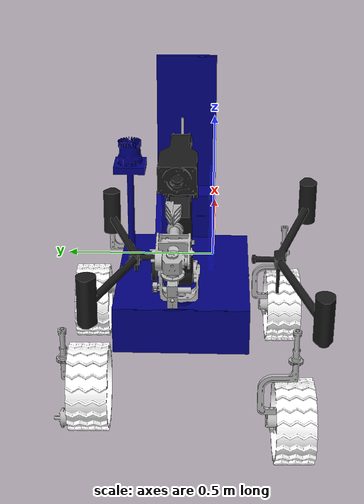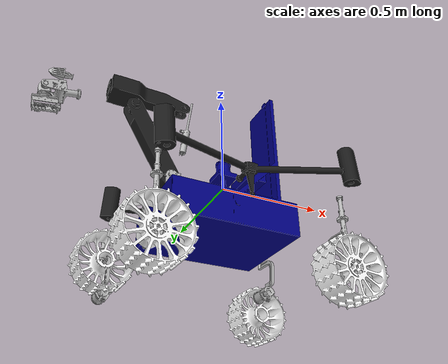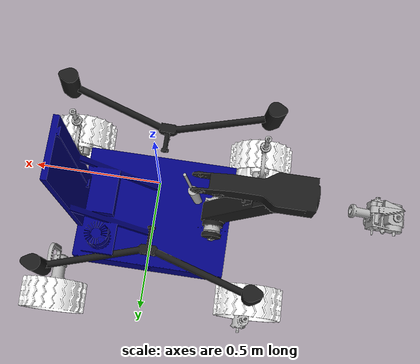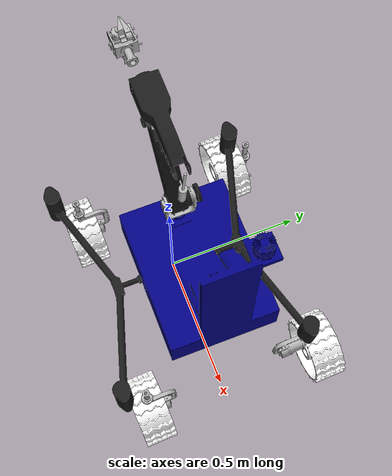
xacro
<?xml version="1.0" ?>
<robot name="kerby" xmlns:xacro="http://www.ros.org/wiki/xacro">

<xacro:include filename="$(find kerby_description)/urdf/materials.xacro" />
<xacro:include filename="$(find kerby_description)/urdf/kerby.trans" />
<xacro:include filename="$(find kerby_description)/urdf/kerby.gazebo" />

<xacro:property name="rpm_to_Radps" value="${2*pi/60.0}" />     <!-- rotations per minute to Rad per second conversion -->
<xacro:property name="velocity_scaling" value="1.0" />     <!-- allows to scale all max velocities down at once -->

<xacro:macro name="aaa_joint_limits" params="lower:=0.0 upper:=0.0 velocity:=${rpm_to_Radps} effort:=100.0">
  <limit lower="${lower}" upper="${upper}" velocity="${velocity}" effort="${effort}"/>
</xacro:macro>

<xacro:property name="joint1_limits">
  <xacro:aaa_joint_limits lower="${-1.5*pi}" upper="${1.5*pi}" velocity="${3 * rpm_to_Radps * velocity_scaling}" />
</xacro:property>

<xacro:property name="joint2_limits">
  <xacro:aaa_joint_limits lower="${-pi}" upper="${pi/2}" velocity="${1 * rpm_to_Radps * velocity_scaling}" />
</xacro:property>

<xacro:property name="joint3_limits">
  <xacro:aaa_joint_limits lower="${-pi/4}" upper="${pi/4}" velocity="${1.5 * rpm_to_Radps * velocity_scaling}" />
</xacro:property>

<xacro:property name="joint4_limits">
  <xacro:aaa_joint_limits lower="${-1.5*pi}" upper="${1.5*pi}" velocity="${6 * rpm_to_Radps * velocity_scaling}" />
</xacro:property>

<xacro:property name="joint5_limits">
  <xacro:aaa_joint_limits lower="${-pi/2}" upper="${pi/2}" velocity="${2 * rpm_to_Radps * velocity_scaling}" />
</xacro:property>

<xacro:property name="joint6_limits">
  <xacro:aaa_joint_limits lower="${-pi}" upper="${pi}" velocity="${6 * rpm_to_Radps * velocity_scaling}" />
</xacro:property>

<link name="base_link">
  <inertial>
    <origin xyz="0.029969421077976347 0.10500332317031078 -0.11062962842827342" rpy="0 0 0"/>
    <mass value="49.646028993833724"/>
    <inertia ixx="1.707273" iyy="2.534956" izz="2.455449" ixy="-0.019527" iyz="-0.055493" ixz="-0.42303"/>
  </inertial>
  <visual>
    <origin xyz="0 0 0" rpy="0 0 0"/>
    <geometry>
      <mesh filename="package://kerby_description/meshes/base_link.stl" scale="0.001 0.001 0.001"/>
    </geometry>
    <material name="blue"/>
  </visual>
  <collision>
    <origin xyz="0 0 0" rpy="0 0 0"/>
    <geometry>
      <mesh filename="package://kerby_description/meshes/base_link.stl" scale="0.001 0.001 0.001"/>
    </geometry>
  </collision>
</link>

<link name="steering_1">
  <inertial>
    <origin xyz="0.0029876037310107573 -0.03602767454974787 -0.21327240320670968" rpy="0 0 0"/>
    <mass value="0.3543584805415501"/>
    <inertia ixx="0.003568" iyy="0.003121" izz="0.000552" ixy="1.7e-05" iyz="-0.000205" ixz="3.2e-05"/>
  </inertial>
  <visual>
    <origin xyz="-0.423307 -0.476325 0.140943" rpy="0 0 0"/>
    <geometry>
      <mesh filename="package://kerby_description/meshes/steering_1.stl" scale="0.001 0.001 0.001"/>
    </geometry>
    <material name="silver"/>
  </visual>
  <collision>
    <origin xyz="-0.423307 -0.476325 0.140943" rpy="0 0 0"/>
    <geometry>
      <mesh filename="package://kerby_description/meshes/steering_1.stl" scale="0.001 0.001 0.001"/>
    </geometry>
  </collision>
</link>

<link name="steering_2">
  <inertial>
    <origin xyz="-0.0029877917009968336 0.036027907882538956 -0.21327245240653972" rpy="0 0 0"/>
    <mass value="0.3543584805415501"/>
    <inertia ixx="0.003568" iyy="0.003121" izz="0.000552" ixy="1.7e-05" iyz="0.000205" ixz="-3.2e-05"/>
  </inertial>
  <visual>
    <origin xyz="-0.42303 0.272491 0.147921" rpy="0 0 0"/>
    <geometry>
      <mesh filename="package://kerby_description/meshes/steering_2.stl" scale="0.001 0.001 0.001"/>
    </geometry>
    <material name="silver"/>
  </visual>
  <collision>
    <origin xyz="-0.42303 0.272491 0.147921" rpy="0 0 0"/>
    <geometry>
      <mesh filename="package://kerby_description/meshes/steering_2.stl" scale="0.001 0.001 0.001"/>
    </geometry>
  </collision>
</link>

<link name="steering_3">
  <inertial>
    <origin xyz="-0.0029882539688568244 0.03602790788253865 -0.21327240320671773" rpy="0 0 0"/>
    <mass value="0.3543584805415501"/>
    <inertia ixx="0.003568" iyy="0.003121" izz="0.000552" ixy="1.7e-05" iyz="0.000205" ixz="-3.2e-05"/>
  </inertial>
  <visual>
    <origin xyz="0.410093 0.272491 0.140943" rpy="0 0 0"/>
    <geometry>
      <mesh filename="package://kerby_description/meshes/steering_3.stl" scale="0.001 0.001 0.001"/>
    </geometry>
    <material name="silver"/>
  </visual>
  <collision>
    <origin xyz="0.410093 0.272491 0.140943" rpy="0 0 0"/>
    <geometry>
      <mesh filename="package://kerby_description/meshes/steering_3.stl" scale="0.001 0.001 0.001"/>
    </geometry>
  </collision>
</link>

<link name="steering_4">
  <inertial>
    <origin xyz="0.002988141463151961 -0.03602767454974776 -0.21327245240653173" rpy="0 0 0"/>
    <mass value="0.3543584805415501"/>
    <inertia ixx="0.003568" iyy="0.003121" izz="0.000552" ixy="1.7e-05" iyz="-0.000205" ixz="3.2e-05"/>
  </inertial>
  <visual>
    <origin xyz="0.409817 -0.476325 0.147921" rpy="0 0 0"/>
    <geometry>
      <mesh filename="package://kerby_description/meshes/steering_4.stl" scale="0.001 0.001 0.001"/>
    </geometry>
    <material name="silver"/>
  </visual>
  <collision>
    <origin xyz="0.409817 -0.476325 0.147921" rpy="0 0 0"/>
    <geometry>
      <mesh filename="package://kerby_description/meshes/steering_4.stl" scale="0.001 0.001 0.001"/>
    </geometry>
  </collision>
</link>

<link name="wheel3_1">
  <inertial>
    <origin xyz="0.0003400707098368816 -0.010197254794898913 3.6630334477316673e-06" rpy="0 0 0"/>
    <mass value="1.592763813314383"/>
    <inertia ixx="0.010896" iyy="0.018605" izz="0.010887" ixy="-0.000257" iyz="-2e-06" ixz="0.0"/>
  </inertial>
  <visual>
    <origin xyz="0.408112 -0.493016 0.417916" rpy="0 0 0"/>
    <geometry>
      <mesh filename="package://kerby_description/meshes/wheel3_1.stl" scale="0.001 0.001 0.001"/>
    </geometry>
    <material name="pink"/>
  </visual>
  <collision>
    <origin xyz="0.408112 -0.493016 0.417916" rpy="0 0 0"/>
    <geometry>
      <mesh filename="package://kerby_description/meshes/wheel3_1.stl" scale="0.001 0.001 0.001"/>
    </geometry>
  </collision>
</link>

<link name="wheel4_1">
  <inertial>
    <origin xyz="0.0003405329776948185 -0.010197254794899857 3.712233269614895e-06" rpy="0 0 0"/>
    <mass value="1.592763813314383"/>
    <inertia ixx="0.010896" iyy="0.018605" izz="0.010887" ixy="-0.000257" iyz="-2e-06" ixz="0.0"/>
  </inertial>
  <visual>
    <origin xyz="-0.425011 -0.493016 0.410938" rpy="0 0 0"/>
    <geometry>
      <mesh filename="package://kerby_description/meshes/wheel4_1.stl" scale="0.001 0.001 0.001"/>
    </geometry>
    <material name="pink"/>
  </visual>
  <collision>
    <origin xyz="-0.425011 -0.493016 0.410938" rpy="0 0 0"/>
    <geometry>
      <mesh filename="package://kerby_description/meshes/wheel4_1.stl" scale="0.001 0.001 0.001"/>
    </geometry>
  </collision>
</link>

<link name="wheel2_1">
  <inertial>
    <origin xyz="-0.0003401832155410234 0.010196488127690917 3.712233260733111e-06" rpy="0 0 0"/>
    <mass value="1.592763813314383"/>
    <inertia ixx="0.010896" iyy="0.018605" izz="0.010887" ixy="-0.000257" iyz="2e-06" ixz="-0.0"/>
  </inertial>
  <visual>
    <origin xyz="0.411798 0.289181 0.410938" rpy="0 0 0"/>
    <geometry>
      <mesh filename="package://kerby_description/meshes/wheel2_1.stl" scale="0.001 0.001 0.001"/>
    </geometry>
    <material name="pink"/>
  </visual>
  <collision>
    <origin xyz="0.411798 0.289181 0.410938" rpy="0 0 0"/>
    <geometry>
      <mesh filename="package://kerby_description/meshes/wheel2_1.stl" scale="0.001 0.001 0.001"/>
    </geometry>
  </collision>
</link>

<link name="wheel1_1">
  <inertial>
    <origin xyz="-0.0003397209476816987 0.010196488127692138 3.6630334383502827e-06" rpy="0 0 0"/>
    <mass value="1.592763813314383"/>
    <inertia ixx="0.010896" iyy="0.018605" izz="0.010887" ixy="-0.000257" iyz="2e-06" ixz="-0.0"/>
  </inertial>
  <visual>
    <origin xyz="-0.421325 0.289181 0.417916" rpy="0 0 0"/>
    <geometry>
      <mesh filename="package://kerby_description/meshes/wheel1_1.stl" scale="0.001 0.001 0.001"/>
    </geometry>
    <material name="pink"/>
  </visual>
  <collision>
    <origin xyz="-0.421325 0.289181 0.417916" rpy="0 0 0"/>
    <geometry>
      <mesh filename="package://kerby_description/meshes/wheel1_1.stl" scale="0.001 0.001 0.001"/>
    </geometry>
  </collision>
</link>

<link name="hd_link2_1">
  <inertial>
    <origin xyz="0.0033070766839577714 0.06083906580288365 0.1440505220890836" rpy="0 0 0"/>
    <mass value="2.4452075265656514"/>
    <inertia ixx="0.038706" iyy="0.03827" izz="0.003043" ixy="3.2e-05" iyz="0.001609" ixz="-5e-05"/>
  </inertial>
  <visual>
    <origin xyz="0.228643 -0.044217 -0.046218" rpy="0 0 0"/>
    <geometry>
      <mesh filename="package://kerby_description/meshes/hd_link2_1.stl" scale="0.001 0.001 0.001"/>
    </geometry>
    <material name="black"/>
  </visual>
  <collision>
    <origin xyz="0.228643 -0.044217 -0.046218" rpy="0 0 0"/>
    <geometry>
      <mesh filename="package://kerby_description/meshes/hd_link2_1.stl" scale="0.001 0.001 0.001"/>
    </geometry>
  </collision>
</link>

<link name="hd_link3_1">
  <inertial>
    <origin xyz="-0.18542255123016124 -0.02818843505267088 0.033215191672649136" rpy="0 0 0"/>
    <mass value="0.3993227194340243"/>
    <inertia ixx="0.000838" iyy="0.00625" izz="0.006374" ixy="4.5e-05" iyz="-5e-06" ixz="0.00018"/>
  </inertial>
  <visual>
    <origin xyz="0.22795 -0.132217 -0.446313" rpy="0 0 0"/>
    <geometry>
      <mesh filename="package://kerby_description/meshes/hd_link3_1.stl" scale="0.001 0.001 0.001"/>
    </geometry>
    <material name="black"/>
  </visual>
  <collision>
    <origin xyz="0.22795 -0.132217 -0.446313" rpy="0 0 0"/>
    <geometry>
      <mesh filename="package://kerby_description/meshes/hd_link3_1.stl" scale="0.001 0.001 0.001"/>
    </geometry>
  </collision>
</link>

<link name="hd_link4_1">
  <inertial>
    <origin xyz="-0.026508760059289482 0.0028968395456604734 -0.000598737646716252" rpy="0 0 0"/>
    <mass value="0.16590781468918114"/>
    <inertia ixx="0.000197" iyy="0.000349" izz="0.000476" ixy="3.9e-05" iyz="5e-06" ixz="1e-06"/>
  </inertial>
  <visual>
    <origin xyz="0.54334 -0.102573 -0.481152" rpy="0 0 0"/>
    <geometry>
      <mesh filename="package://kerby_description/meshes/hd_link4_1.stl" scale="0.001 0.001 0.001"/>
    </geometry>
    <material name="silver"/>
  </visual>
  <collision>
    <origin xyz="0.54334 -0.102573 -0.481152" rpy="0 0 0"/>
    <geometry>
      <mesh filename="package://kerby_description/meshes/hd_link4_1.stl" scale="0.001 0.001 0.001"/>
    </geometry>
  </collision>
</link>

<link name="hd_link5_1">
  <inertial>
    <origin xyz="-0.00326876427210665 0.038460537452552596 -0.0001281048652070904" rpy="0 0 0"/>
    <mass value="0.06877842327462741"/>
    <inertia ixx="4.9e-05" iyy="2.9e-05" izz="4.3e-05" ixy="1e-06" iyz="0.0" ixz="0.0"/>
  </inertial>
  <visual>
    <origin xyz="0.63704 -0.060573 -0.481315" rpy="0 0 0"/>
    <geometry>
      <mesh filename="package://kerby_description/meshes/hd_link5_1.stl" scale="0.001 0.001 0.001"/>
    </geometry>
    <material name="silver"/>
  </visual>
  <collision>
    <origin xyz="0.63704 -0.060573 -0.481315" rpy="0 0 0"/>
    <geometry>
      <mesh filename="package://kerby_description/meshes/hd_link5_1.stl" scale="0.001 0.001 0.001"/>
    </geometry>
  </collision>
</link>

<link name="hd_link6_1">
  <inertial>
    <origin xyz="-0.03520188089997378 -0.0007184800362615151 0.000553267969914728" rpy="0 0 0"/>
    <mass value="0.11153016933793788"/>
    <inertia ixx="0.000117" iyy="0.000166" izz="0.000263" ixy="-2e-06" iyz="-1e-06" ixz="-1e-06"/>
  </inertial>
  <visual>
    <origin xyz="0.66404 -0.102533 -0.48115" rpy="0 0 0"/>
    <geometry>
      <mesh filename="package://kerby_description/meshes/hd_link6_1.stl" scale="0.001 0.001 0.001"/>
    </geometry>
    <material name="silver"/>
  </visual>
  <collision>
    <origin xyz="0.66404 -0.102533 -0.48115" rpy="0 0 0"/>
    <geometry>
      <mesh filename="package://kerby_description/meshes/hd_link6_1.stl" scale="0.001 0.001 0.001"/>
    </geometry>
  </collision>
</link>

<link name="hd_finger2_1">
  <inertial>
    <origin xyz="0.36572155404860496 -0.7471770274512002 -0.09385171158022082" rpy="0 0 0"/>
    <mass value="0.025342855198124774"/>
    <inertia ixx="4e-06" iyy="1.8e-05" izz="1.6e-05" ixy="-2e-06" iyz="-0.0" ixz="-2e-06"/>
  </inertial>
  <visual>
    <origin xyz="1.132411 -0.857299 -0.577422" rpy="0 0 0"/>
    <geometry>
      <mesh filename="package://kerby_description/meshes/hd_finger2_1.stl" scale="0.001 0.001 0.001"/>
    </geometry>
    <material name="silver"/>
  </visual>
  <collision>
    <origin xyz="1.132411 -0.857299 -0.577422" rpy="0 0 0"/>
    <geometry>
      <mesh filename="package://kerby_description/meshes/hd_finger2_1.stl" scale="0.001 0.001 0.001"/>
    </geometry>
  </collision>
</link>

<link name="hd_finger1_1">
  <inertial>
    <origin xyz="0.34237822893598846 -0.7617001148724551 -0.1442671674369853" rpy="0 0 0"/>
    <mass value="0.025342855198124774"/>
    <inertia ixx="4e-06" iyy="1.8e-05" izz="1.6e-05" ixy="2e-06" iyz="-0.0" ixz="2e-06"/>
  </inertial>
  <visual>
    <origin xyz="1.10949 -0.856977 -0.62175" rpy="0 0 0"/>
    <geometry>
      <mesh filename="package://kerby_description/meshes/hd_finger1_1.stl" scale="0.001 0.001 0.001"/>
    </geometry>
    <material name="silver"/>
  </visual>
  <collision>
    <origin xyz="1.10949 -0.856977 -0.62175" rpy="0 0 0"/>
    <geometry>
      <mesh filename="package://kerby_description/meshes/hd_finger1_1.stl" scale="0.001 0.001 0.001"/>
    </geometry>
  </collision>
</link>

<link name="hd_motor_j3_1">
  <inertial>
    <origin xyz="-0.26883632684956255 0.15032394640210167 0.12504846034721717" rpy="0 0 0"/>
    <mass value="0.11925838600046076"/>
    <inertia ixx="0.000514" iyy="0.000525" izz="2.4e-05" ixy="-0.0" iyz="-0.0" ixz="-7.3e-05"/>
  </inertial>
  <visual>
    <origin xyz="-0.12039 0.049107 -0.176255" rpy="0 0 0"/>
    <geometry>
      <mesh filename="package://kerby_description/meshes/hd_motor_j3_1.stl" scale="0.001 0.001 0.001"/>
    </geometry>
    <material name="silver"/>
  </visual>
  <collision>
    <origin xyz="-0.12039 0.049107 -0.176255" rpy="0 0 0"/>
    <geometry>
      <mesh filename="package://kerby_description/meshes/hd_motor_j3_1.stl" scale="0.001 0.001 0.001"/>
    </geometry>
  </collision>
</link>

<link name="pivot_droit_1">
  <inertial>
    <origin xyz="3.143512292182876e-05 0.11623514902532184 0.013410381880219507" rpy="0 0 0"/>
    <mass value="1.6615144825592312"/>
    <inertia ixx="0.006305" iyy="0.220618" izz="0.221436" ixy="1e-06" iyz="-0.000817" ixz="-0.001791"/>
  </inertial>
  <visual>
    <origin xyz="-0.006607 -0.332917 0.127932" rpy="0 0 0"/>
    <geometry>
      <mesh filename="package://kerby_description/meshes/pivot_droit_1.stl" scale="0.001 0.001 0.001"/>
    </geometry>
    <material name="black"/>
  </visual>
  <collision>
    <origin xyz="-0.006607 -0.332917 0.127932" rpy="0 0 0"/>
    <geometry>
      <mesh filename="package://kerby_description/meshes/pivot_droit_1.stl" scale="0.001 0.001 0.001"/>
    </geometry>
  </collision>
</link>

<link name="hd_link1_1">
  <inertial>
    <origin xyz="0.00019077794044744523 0.01421055340514632 0.03342137346722458" rpy="0 0 0"/>
    <mass value="0.3391136619658369"/>
    <inertia ixx="0.001801" iyy="0.001217" izz="0.00078" ixy="1e-05" iyz="-0.000142" ixz="-8e-06"/>
  </inertial>
  <visual>
    <origin xyz="0.228643 -0.101917 0.055782" rpy="0 0 0"/>
    <geometry>
      <mesh filename="package://kerby_description/meshes/hd_link1_1.stl" scale="0.001 0.001 0.001"/>
    </geometry>
    <material name="silver"/>
  </visual>
  <collision>
    <origin xyz="0.228643 -0.101917 0.055782" rpy="0 0 0"/>
    <geometry>
      <mesh filename="package://kerby_description/meshes/hd_link1_1.stl" scale="0.001 0.001 0.001"/>
    </geometry>
  </collision>
</link>

<link name="pivot_gauche_1">
  <inertial>
    <origin xyz="-3.2085360767372846e-05 -0.11623491569253713 0.013410381880211292" rpy="0 0 0"/>
    <mass value="1.6615144825592312"/>
    <inertia ixx="0.006305" iyy="0.220618" izz="0.221436" ixy="1e-06" iyz="0.000817" ixz="0.001791"/>
  </inertial>
  <visual>
    <origin xyz="-0.006607 0.129083 0.127932" rpy="0 0 0"/>
    <geometry>
      <mesh filename="package://kerby_description/meshes/pivot_gauche_1.stl" scale="0.001 0.001 0.001"/>
    </geometry>
    <material name="black"/>
  </visual>
  <collision>
    <origin xyz="-0.006607 0.129083 0.127932" rpy="0 0 0"/>
    <geometry>
      <mesh filename="package://kerby_description/meshes/pivot_gauche_1.stl" scale="0.001 0.001 0.001"/>
    </geometry>
  </collision>
</link>

<joint name="steering1" type="continuous">
  <origin xyz="0.4167 0.143408 -0.013011" rpy="0 0 0"/>
  <parent link="pivot_droit_1"/>
  <child link="steering_1"/>
  <axis xyz="0.008375 0.0 -0.999965"/>
</joint>

<joint name="steering2" type="continuous">
  <origin xyz="0.416423 -0.143408 -0.019989" rpy="0 0 0"/>
  <parent link="pivot_gauche_1"/>
  <child link="steering_2"/>
  <axis xyz="0.008375 -0.0 0.999965"/>
</joint>

<joint name="steering3" type="continuous">
  <origin xyz="-0.4167 -0.143408 -0.013011" rpy="0 0 0"/>
  <parent link="pivot_gauche_1"/>
  <child link="steering_3"/>
  <axis xyz="-0.008375 0.0 -0.999965"/>
</joint>

<joint name="steering4" type="continuous">
  <origin xyz="-0.416424 0.143408 -0.019989" rpy="0 0 0"/>
  <parent link="pivot_droit_1"/>
  <child link="steering_4"/>
  <axis xyz="-0.008375 -0.0 0.999965"/>
</joint>

<joint name="driving4" type="continuous">
  <origin xyz="0.001705 0.016691 -0.269995" rpy="0 0 0"/>
  <parent link="steering_4"/>
  <child link="wheel3_1"/>
  <axis xyz="-0.033329 0.999444 -0.000279"/>
</joint>

<joint name="driving1" type="continuous">
  <origin xyz="0.001704 0.016691 -0.269995" rpy="0 0 0"/>
  <parent link="steering_1"/>
  <child link="wheel4_1"/>
  <axis xyz="-0.033329 0.999444 -0.000279"/>
</joint>

<joint name="driving3" type="continuous">
  <origin xyz="-0.001705 -0.01669 -0.269995" rpy="0 0 0"/>
  <parent link="steering_3"/>
  <child link="wheel2_1"/>
  <axis xyz="0.033329 -0.999444 -0.000279"/>
</joint>

<joint name="driving2" type="continuous">
  <origin xyz="-0.001705 -0.01669 -0.269995" rpy="0 0 0"/>
  <parent link="steering_2"/>
  <child link="wheel1_1"/>
  <axis xyz="0.033329 -0.999444 -0.000279"/>
</joint>

<joint name="joint2" type="revolute">
  <origin xyz="0.0 -0.0577 0.102" rpy="0 0 0"/>
  <parent link="hd_link1_1"/>
  <child link="hd_link2_1"/>
  <axis xyz="0.0 1.0 0.0"/>
  <xacro:insert_block name="joint2_limits" />
</joint>

<joint name="joint3" type="revolute">
  <origin xyz="0.000693 0.088 0.400095" rpy="0 0 0"/>
  <parent link="hd_link2_1"/>
  <child link="hd_link3_1"/>
  <axis xyz="-0.0 1.0 0.0"/>
  <xacro:insert_block name="joint3_limits" />
</joint>

<joint name="joint4" type="revolute">
  <origin xyz="-0.31539 -0.029644 0.034839" rpy="0 0 0"/>
  <parent link="hd_link3_1"/>
  <child link="hd_link4_1"/>
  <axis xyz="0.999999 0.0 -0.001732"/>
  <xacro:insert_block name="joint4_limits" />
</joint>

<joint name="joint5" type="revolute">
  <origin xyz="-0.0937 -0.042 0.000163" rpy="0 0 0"/>
  <parent link="hd_link4_1"/>
  <child link="hd_link5_1"/>
  <axis xyz="0.0 -1.0 0.0"/>
  <xacro:insert_block name="joint5_limits" />
</joint>

<joint name="joint6" type="revolute">
  <origin xyz="-0.027 0.04196 -0.000165" rpy="0 0 0"/>
  <parent link="hd_link5_1"/>
  <child link="hd_link6_1"/>
  <axis xyz="-0.999981 -0.0 -0.006092"/>
  <xacro:insert_block name="joint6_limits" />
</joint>

<joint name="finger1" type="prismatic">
  <origin xyz="-0.468371 0.754766 0.096272" rpy="0 0 0"/>
  <parent link="hd_link6_1"/>
  <child link="hd_finger2_1"/>
  <axis xyz="0.007713 0.999801 0.018395"/>
  <limit upper="0.0" lower="0.0" effort="100" velocity="100"/>
</joint>

<joint name="finger2" type="prismatic">
  <origin xyz="-0.44545 0.754444 0.1406" rpy="0 0 0"/>
  <parent link="hd_link6_1"/>
  <child link="hd_finger1_1"/>
  <axis xyz="0.007713 0.999801 0.018395"/>
  <limit upper="0.0" lower="0.0" effort="100" velocity="100"/>
  <mimic joint="finger1" multiplier="-1" offset="0"/>
</joint>

<joint name="moteurJ3" type="fixed">
  <origin xyz="0.349033 -0.093324 0.130037" rpy="0 0 0"/>
  <parent link="hd_link2_1"/>
  <child link="hd_motor_j3_1"/>
</joint>

<joint name="pivot_gauche" type="continuous">
  <origin xyz="0.006607 0.332917 -0.127932" rpy="0 0 0"/>
  <parent link="base_link"/>
  <child link="pivot_droit_1"/>
  <axis xyz="0.0 -1.0 -0.0"/>
</joint>

<joint name="joint1" type="revolute">
  <origin xyz="-0.228643 0.101917 -0.055782" rpy="0 0 0"/>
  <parent link="base_link"/>
  <child link="hd_link1_1"/>
  <axis xyz="0.0 -0.0 1.0"/>
  <xacro:insert_block name="joint1_limits" />
</joint>

<joint name="pivot_droit" type="continuous">
  <origin xyz="0.006607 -0.129083 -0.127932" rpy="0 0 0"/>
  <parent link="base_link"/>
  <child link="pivot_gauche_1"/>
  <axis xyz="-0.0 -1.0 -0.0"/>
</joint>

</robot>

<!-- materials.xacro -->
<robot name="kerby" xmlns:xacro="http://www.ros.org/wiki/xacro" >

<material name="silver">
  <color rgba="0.700 0.700 0.700 1.000"/>
</material>

<material name="black">
  <color rgba="0.1 0.1 0.1 1.000"/>
</material>

<material name="white">
  <color rgba="1 1 1 1.000"/>
</material>

<material name="pink">
  <color rgba="1 1 1 1.000"/>
</material>

<material name="blue">
  <color rgba="0 0 0.5 1.000"/>
</material>

</robot>

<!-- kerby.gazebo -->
<robot name="kerby" xmlns:xacro="http://www.ros.org/wiki/xacro" >

<xacro:property name="body_color" value="Gazebo/Silver" />

<gazebo>
  <plugin name="control" filename="libgazebo_ros_control.so"/>
</gazebo>
<gazebo reference="base_link">
  <material>${body_color}</material>
  <mu1>0.2</mu1>
  <mu2>0.2</mu2>
  <selfCollide>true</selfCollide>
  <gravity>true</gravity>
</gazebo>

<gazebo reference="steering_1">
  <material>${body_color}</material>
  <mu1>0.2</mu1>
  <mu2>0.2</mu2>
  <selfCollide>true</selfCollide>
</gazebo>

<gazebo reference="steering_2">
  <material>${body_color}</material>
  <mu1>0.2</mu1>
  <mu2>0.2</mu2>
  <selfCollide>true</selfCollide>
</gazebo>

<gazebo reference="steering_3">
  <material>${body_color}</material>
  <mu1>0.2</mu1>
  <mu2>0.2</mu2>
  <selfCollide>true</selfCollide>
</gazebo>

<gazebo reference="steering_4">
  <material>${body_color}</material>
  <mu1>0.2</mu1>
  <mu2>0.2</mu2>
  <selfCollide>true</selfCollide>
</gazebo>

<gazebo reference="wheel3_1">
  <material>${body_color}</material>
  <mu1>0.2</mu1>
  <mu2>0.2</mu2>
  <selfCollide>true</selfCollide>
</gazebo>

<gazebo reference="wheel4_1">
  <material>${body_color}</material>
  <mu1>0.2</mu1>
  <mu2>0.2</mu2>
  <selfCollide>true</selfCollide>
</gazebo>

<gazebo reference="wheel2_1">
  <material>${body_color}</material>
  <mu1>0.2</mu1>
  <mu2>0.2</mu2>
  <selfCollide>true</selfCollide>
</gazebo>

<gazebo reference="wheel1_1">
  <material>${body_color}</material>
  <mu1>0.2</mu1>
  <mu2>0.2</mu2>
  <selfCollide>true</selfCollide>
</gazebo>

<gazebo reference="hd_link2_1">
  <material>${body_color}</material>
  <mu1>0.2</mu1>
  <mu2>0.2</mu2>
  <selfCollide>true</selfCollide>
</gazebo>

<gazebo reference="hd_link3_1">
  <material>${body_color}</material>
  <mu1>0.2</mu1>
  <mu2>0.2</mu2>
  <selfCollide>true</selfCollide>
</gazebo>

<gazebo reference="hd_link4_1">
  <material>${body_color}</material>
  <mu1>0.2</mu1>
  <mu2>0.2</mu2>
  <selfCollide>true</selfCollide>
</gazebo>

<gazebo reference="hd_link5_1">
  <material>${body_color}</material>
  <mu1>0.2</mu1>
  <mu2>0.2</mu2>
  <selfCollide>true</selfCollide>
</gazebo>

<gazebo reference="hd_link6_1">
  <material>${body_color}</material>
  <mu1>0.2</mu1>
  <mu2>0.2</mu2>
  <selfCollide>true</selfCollide>
</gazebo>

<gazebo reference="hd_finger2_1">
  <material>${body_color}</material>
  <mu1>0.2</mu1>
  <mu2>0.2</mu2>
  <selfCollide>true</selfCollide>
</gazebo>

<gazebo reference="hd_finger1_1">
  <material>${body_color}</material>
  <mu1>0.2</mu1>
  <mu2>0.2</mu2>
  <selfCollide>true</selfCollide>
</gazebo>

<gazebo reference="hd_motor_j3_1">
  <material>${body_color}</material>
  <mu1>0.2</mu1>
  <mu2>0.2</mu2>
  <selfCollide>true</selfCollide>
</gazebo>

<gazebo reference="pivot_droit_1">
  <material>${body_color}</material>
  <mu1>0.2</mu1>
  <mu2>0.2</mu2>
  <selfCollide>true</selfCollide>
</gazebo>

<gazebo reference="hd_link1_1">
  <material>${body_color}</material>
  <mu1>0.2</mu1>
  <mu2>0.2</mu2>
  <selfCollide>true</selfCollide>
</gazebo>

<gazebo reference="pivot_gauche_1">
  <material>${body_color}</material>
  <mu1>0.2</mu1>
  <mu2>0.2</mu2>
  <selfCollide>true</selfCollide>
</gazebo>

</robot>
